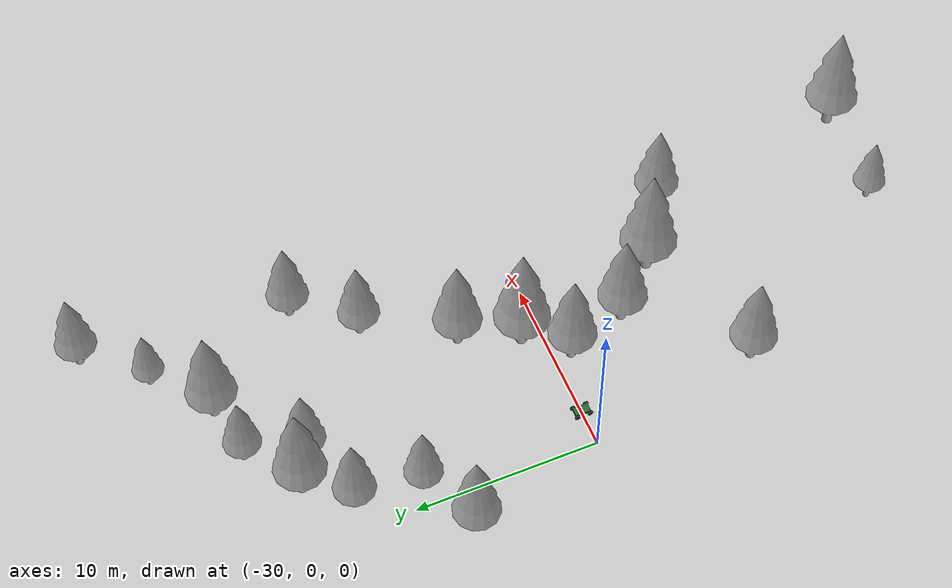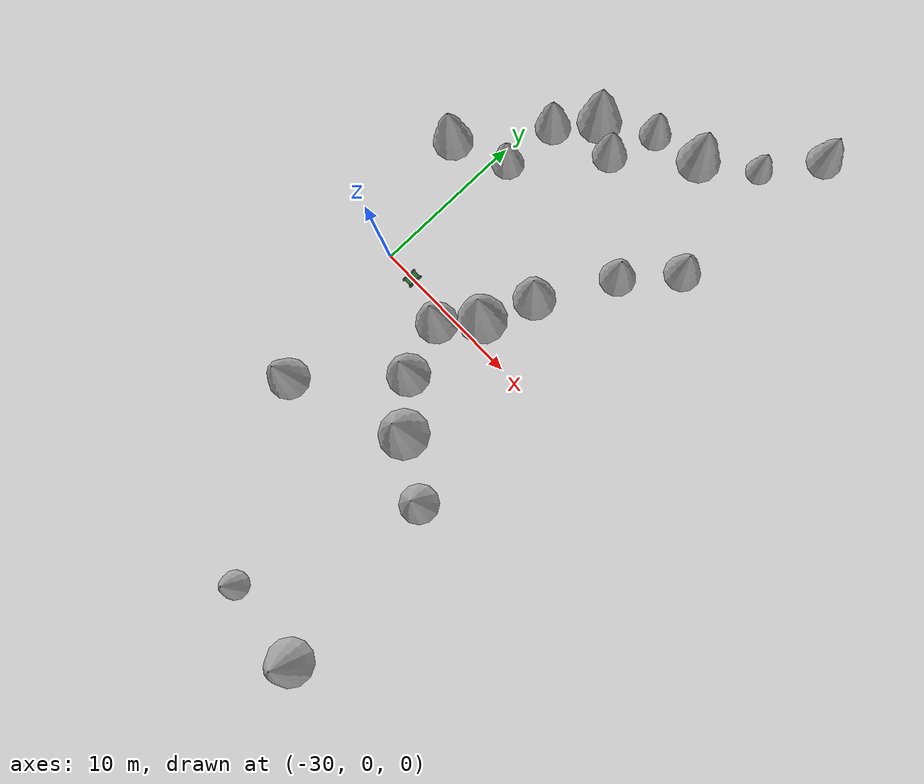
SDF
<sdf version="1.9">
 <world name="nomad_forest">
  <model name="tree_013">
   <static>true</static>
   <pose>-18.874881461118147 8.75328113137504 0.11400853656305698 0 0 5.807915895315944</pose>
   <link name="link">
    <visual name="visual">
     <geometry>
      <mesh>
       <uri>../assets/models/pine_tree.obj</uri>
       <scale>1.2615501843951384 1.2615501843951384 1.2615501843951384</scale>
      </mesh>
     </geometry>
    </visual>
    <collision name="trunk">
     <pose>0 0 2.0184802950322216 0 0 0</pose>
     <geometry>
      <cylinder><radius>0.2523100368790277</radius><length>4.036960590064443</length></cylinder>
     </geometry>
    </collision>
   </link>
  </model>
  <model name="tree_066">
   <static>true</static>
   <pose>-28.481551397186305 12.689320493782844 0.10055199117383896 0 0 4.343758265578293</pose>
   <link name="link">
    <visual name="visual">
     <geometry>
      <mesh>
       <uri>../assets/models/pine_tree.obj</uri>
       <scale>1.2595461972461752 1.2595461972461752 1.2595461972461752</scale>
      </mesh>
     </geometry>
    </visual>
    <collision name="trunk">
     <pose>0 0 2.0152739155938804 0 0 0</pose>
     <geometry>
      <cylinder><radius>0.25190923944923505</radius><length>4.030547831187761</length></cylinder>
     </geometry>
    </collision>
   </link>
  </model>
  <model name="tree_069">
   <static>true</static>
   <pose>-23.359779201910932 -4.380121259435903 0.0019403356267006383 0 0 6.163970311918015</pose>
   <link name="link">
    <visual name="visual">
     <geometry>
      <mesh>
       <uri>../assets/models/pine_tree.obj</uri>
       <scale>1.4930694084586045 1.4930694084586045 1.4930694084586045</scale>
      </mesh>
     </geometry>
    </visual>
    <collision name="trunk">
     <pose>0 0 2.3889110535337674 0 0 0</pose>
     <geometry>
      <cylinder><radius>0.29861388169172093</radius><length>4.777822107067535</length></cylinder>
     </geometry>
    </collision>
   </link>
  </model>
  <model name="tree_078">
   <static>true</static>
   <pose>-28.187033647611894 -9.640139238932317 0.0 0 0 4.017669848650049</pose>
   <link name="link">
    <visual name="visual">
     <geometry>
      <mesh>
       <uri>../assets/models/pine_tree.obj</uri>
       <scale>1.4278402508123196 1.4278402508123196 1.4278402508123196</scale>
      </mesh>
     </geometry>
    </visual>
    <collision name="trunk">
     <pose>0 0 2.2845444012997116 0 0 0</pose>
     <geometry>
      <cylinder><radius>0.28556805016246395</radius><length>4.569088802599423</length></cylinder>
     </geometry>
    </collision>
   </link>
  </model>
  <model name="tree_149">
   <static>true</static>
   <pose>-21.42234835056727 4.207496814367655 0.10224305637607897 0 0 4.84083130070508</pose>
   <link name="link">
    <visual name="visual">
     <geometry>
      <mesh>
       <uri>../assets/models/pine_tree.obj</uri>
       <scale>1.4725095041482734 1.4725095041482734 1.4725095041482734</scale>
      </mesh>
     </geometry>
    </visual>
    <collision name="trunk">
     <pose>0 0 2.3560152066372377 0 0 0</pose>
     <geometry>
      <cylinder><radius>0.2945019008296547</radius><length>4.7120304132744755</length></cylinder>
     </geometry>
    </collision>
   </link>
  </model>
  <model name="tree_153">
   <static>true</static>
   <pose>-20.891091783287557 -7.006664565816436 0.07458544929184167 0 0 2.9006995232513804</pose>
   <link name="link">
    <visual name="visual">
     <geometry>
      <mesh>
       <uri>../assets/models/pine_tree.obj</uri>
       <scale>1.7337437156593505 1.7337437156593505 1.7337437156593505</scale>
      </mesh>
     </geometry>
    </visual>
    <collision name="trunk">
     <pose>0 0 2.7739899450549608 0 0 0</pose>
     <geometry>
      <cylinder><radius>0.3467487431318701</radius><length>5.5479798901099215</length></cylinder>
     </geometry>
    </collision>
   </link>
  </model>
  <model name="tree_167">
   <static>true</static>
   <pose>-20.586464398322278 17.464287054904197 0.009521682614942089 0 0 3.9372211458272104</pose>
   <link name="link">
    <visual name="visual">
     <geometry>
      <mesh>
       <uri>../assets/models/pine_tree.obj</uri>
       <scale>1.5296829712660673 1.5296829712660673 1.5296829712660673</scale>
      </mesh>
     </geometry>
    </visual>
    <collision name="trunk">
     <pose>0 0 2.447492754025708 0 0 0</pose>
     <geometry>
      <cylinder><radius>0.3059365942532135</radius><length>4.894985508051416</length></cylinder>
     </geometry>
    </collision>
   </link>
  </model>
  <model name="tree_169">
   <static>true</static>
   <pose>-15.907897212675639 -20.621054631821146 0.09158772454175604 0 0 4.397739329208943</pose>
   <link name="link">
    <visual name="visual">
     <geometry>
      <mesh>
       <uri>../assets/models/pine_tree.obj</uri>
       <scale>1.6288629303195623 1.6288629303195623 1.6288629303195623</scale>
      </mesh>
     </geometry>
    </visual>
    <collision name="trunk">
     <pose>0 0 2.6061806885112997 0 0 0</pose>
     <geometry>
      <cylinder><radius>0.32577258606391246</radius><length>5.212361377022599</length></cylinder>
     </geometry>
    </collision>
   </link>
  </model>
  <model name="tree_175">
   <static>true</static>
   <pose>-23.734347429497404 16.94640575677797 0.07473424029993755 0 0 3.4966127963765383</pose>
   <link name="link">
    <visual name="visual">
     <geometry>
      <mesh>
       <uri>../assets/models/pine_tree.obj</uri>
       <scale>1.1305137808125227 1.1305137808125227 1.1305137808125227</scale>
      </mesh>
     </geometry>
    </visual>
    <collision name="trunk">
     <pose>0 0 1.8088220493000364 0 0 0</pose>
     <geometry>
      <cylinder><radius>0.22610275616250455</radius><length>3.617644098600073</length></cylinder>
     </geometry>
    </collision>
   </link>
  </model>
  <model name="tree_194">
   <static>true</static>
   <pose>-17.336646720283735 -9.18888182673776 0.1898675990797306 0 0 3.4435954482454503</pose>
   <link name="link">
    <visual name="visual">
     <geometry>
      <mesh>
       <uri>../assets/models/pine_tree.obj</uri>
       <scale>1.3567313645033092 1.3567313645033092 1.3567313645033092</scale>
      </mesh>
     </geometry>
    </visual>
    <collision name="trunk">
     <pose>0 0 2.170770183205295 0 0 0</pose>
     <geometry><cylinder><radius>0.2713462729006619</radius><length>4.34154036641059</length></cylinder></geometry>
    </collision>
   </link>
  </model>
  <model name="tree_211">
   <static>true</static>
   <pose>-21.460599822865465 -20.115927286295552 0.2049713885581833 0 0 3.894659793628616</pose>
   <link name="link">
    <visual name="visual">
     <geometry>
      <mesh>
       <uri>../assets/models/pine_tree.obj</uri>
       <scale>0.9946663438713754 0.9946663438713754 0.9946663438713754</scale>
      </mesh>
     </geometry>
    </visual>
    <collision name="trunk">
     <pose>0 0 1.5914661501942007 0 0 0</pose>
     <geometry>
      <cylinder><radius>0.19893326877427508</radius><length>3.1829323003884014</length></cylinder>
     </geometry>
    </collision>
   </link>
  </model>
  <model name="tree_236">
   <static>true</static>
   <pose>-32.08798108521287 7.6007282029770735 0.1457010729308157 0 0 6.239127595001427</pose>
   <link name="link">
    <visual name="visual">
     <geometry>
      <mesh>
       <uri>../assets/models/pine_tree.obj</uri>
       <scale>1.4053617547678288 1.4053617547678288 1.4053617547678288</scale>
      </mesh>
     </geometry>
    </visual>
    <collision name="trunk">
     <pose>0 0 2.248578807628526 0 0 0</pose>
     <geometry>
      <cylinder><radius>0.28107235095356575</radius><length>4.497157615257052</length></cylinder>
     </geometry>
    </collision>
   </link>
  </model>
  <model name="tree_254">
   <static>true</static>
   <pose>-15.1723491187469 22.987311574693074 0.4125078526900938 0 0 4.911732377377822</pose>
   <link name="link">
    <visual name="visual">
     <geometry>
      <mesh>
       <uri>../assets/models/pine_tree.obj</uri>
       <scale>1.246869496296855 1.246869496296855 1.246869496296855</scale>
      </mesh>
     </geometry>
    </visual>
    <collision name="trunk">
     <pose>0 0 1.994991194074968 0 0 0</pose>
     <geometry><cylinder><radius>0.249373899259371</radius><length>3.989982388149936</length></cylinder></geometry>
    </collision>
   </link>
  </model>
  <model name="tree_265">
   <static>true</static>
   <pose>-26.60471211196358 14.85861522068194 0.09084812943580362 0 0 2.9267937099276815</pose>
   <link name="link">
    <visual name="visual">
     <geometry>
      <mesh>
       <uri>../assets/models/pine_tree.obj</uri>
       <scale>1.5670582890273161 1.5670582890273161 1.5670582890273161</scale>
      </mesh>
     </geometry>
    </visual>
    <collision name="trunk">
     <pose>0 0 2.507293262443706 0 0 0</pose>
     <geometry>
      <cylinder><radius>0.31341165780546326</radius><length>5.014586524887412</length></cylinder>
     </geometry>
    </collision>
   </link>
  </model>
  <model name="tree_282">
   <static>true</static>
   <pose>-17.61697545870494 19.955846756455564 0.0847304603588547 0 0 6.049162888117273</pose>
   <link name="link">
    <visual name="visual">
     <geometry>
      <mesh>
       <uri>../assets/models/pine_tree.obj</uri>
       <scale>0.9516946154348055 0.9516946154348055 0.9516946154348055</scale>
      </mesh>
     </geometry>
    </visual>
    <collision name="trunk">
     <pose>0 0 1.5227113846956888 0 0 0</pose>
     <geometry>
      <cylinder><radius>0.1903389230869611</radius><length>3.0454227693913776</length></cylinder>
     </geometry>
    </collision>
   </link>
  </model>
  <model name="tree_286">
   <static>true</static>
   <pose>-22.66837533851311 1.0839203077479418 0.0029319875521565154 0 0 1.534402331849381</pose>
   <link name="link">
    <visual name="visual">
     <geometry>
      <mesh>
       <uri>../assets/models/pine_tree.obj</uri>
       <scale>1.7071312498833526 1.7071312498833526 1.7071312498833526</scale>
      </mesh>
     </geometry>
    </visual>
    <collision name="trunk">
     <pose>0 0 2.7314099998133643 0 0 0</pose>
     <geometry>
      <cylinder><radius>0.34142624997667054</radius><length>5.462819999626729</length></cylinder>
     </geometry>
    </collision>
   </link>
  </model>
  <model name="tree_297">
   <static>true</static>
   <pose>-28.81453351404167 9.11830352773918 0.0008690736626581766 0 0 2.5639489472201085</pose>
   <link name="link">
    <visual name="visual">
     <geometry>
      <mesh>
       <uri>../assets/models/pine_tree.obj</uri>
       <scale>1.1402890045643521 1.1402890045643521 1.1402890045643521</scale>
      </mesh>
     </geometry>
    </visual>
    <collision name="trunk">
     <pose>0 0 1.8244624073029634 0 0 0</pose>
     <geometry>
      <cylinder><radius>0.22805780091287042</radius><length>3.6489248146059268</length></cylinder>
     </geometry>
    </collision>
   </link>
  </model>
  <model name="tree_312">
   <static>true</static>
   <pose>-24.75265672608075 13.95472760592856 0.0007574845042103398 0 0 0.65510919115056</pose>
   <link name="link">
    <visual name="visual">
     <geometry>
      <mesh>
       <uri>../assets/models/pine_tree.obj</uri>
       <scale>1.2242497348314314 1.2242497348314314 1.2242497348314314</scale>
      </mesh>
     </geometry>
    </visual>
    <collision name="trunk">
     <pose>0 0 1.9587995757302903 0 0 0</pose>
     <geometry>
      <cylinder><radius>0.24484994696628629</radius><length>3.9175991514605806</length></cylinder>
     </geometry>
    </collision>
   </link>
  </model>
  <model name="tree_319">
   <static>true</static>
   <pose>-16.338997851109397 11.796116220900252 0.05705821960165156 0 0 1.2190195895403377</pose>
   <link name="link">
    <visual name="visual">
     <geometry>
      <mesh>
       <uri>../assets/models/pine_tree.obj</uri>
       <scale>1.2792700176452034 1.2792700176452034 1.2792700176452034</scale>
      </mesh>
     </geometry>
    </visual>
    <collision name="trunk">
     <pose>0 0 2.0468320282323256 0 0 0</pose>
     <geometry>
      <cylinder><radius>0.2558540035290407</radius><length>4.093664056464651</length></cylinder>
     </geometry>
    </collision>
   </link>
  </model>
  <model name="tree_336">
   <static>true</static>
   <pose>-24.493613226581587 -0.9810111616008754 0.0 0 0 3.567763804688622</pose>
   <link name="link">
    <visual name="visual">
     <geometry>
      <mesh>
       <uri>../assets/models/pine_tree.obj</uri>
       <scale>1.468461257795776 1.468461257795776 1.468461257795776</scale>
      </mesh>
     </geometry>
    </visual>
    <collision name="trunk">
     <pose>0 0 2.349538012473242 0 0 0</pose>
     <geometry>
      <cylinder><radius>0.29369225155915524</radius><length>4.699076024946484</length></cylinder>
     </geometry>
    </collision>
   </link>
  </model>
  <model name="nomad_vehicle" canonical_link="base_link">
   <static>false</static>
   <link name="base_link">
    <pose relative_to="__model__">0 0 0 0 0 0</pose>
    <inertial>
     <pose>0 0 0.2 0 0 0</pose>
     <mass>30</mass>
     <inertia><ixx>0.661</ixx><iyy>1.84225</iyy><izz>2.43125</izz><ixy>0</ixy><ixz>0</ixz><iyz>0</iyz></inertia>
    </inertial>
    <visual name="base_link_visual">
     <pose>0 0 0.2 0 0 0</pose>
     <geometry><box><size>0.85 0.5 0.12</size></box></geometry>
     <material><ambient>0.15 0.38 0.18 1</ambient><diffuse>0.15 0.38 0.18 1</diffuse></material>
    </visual>
    <collision name="base_link_collision">
     <pose>0 0 0.2 0 0 0</pose>
     <geometry><box><size>0.85 0.5 0.12</size></box></geometry>
    </collision>
    <sensor name="oak_rgb" type="rgbd_camera">
     <pose relative_to="base_link">0.46 0 0.29 0 0 0</pose>
     <always_on>true</always_on>
     <update_rate>30</update_rate>
     <visualize>false</visualize>
     <topic>/nomad/raw/oak/rgbd</topic>
     <gz_frame_id>oak_rgb_optical_frame</gz_frame_id>
     <camera>
      <optical_frame_id>oak_rgb_optical_frame</optical_frame_id>
      <horizontal_fov>1.20427718387609</horizontal_fov>
      <image><width>640</width><height>480</height><format>R8G8B8</format></image>
      <clip><near>0.05</near><far>40</far></clip>
      <depth_camera><clip><near>0.4</near><far>8</far></clip></depth_camera>
      <lens>
       <type>gnomonical</type>
       <intrinsics><fx>465.602889175182</fx><fy>471.026521321236</fy><cx>320</cx><cy>240</cy><s>0</s></intrinsics>
       <projection>
        <p_fx>465.602889175182</p_fx>
        <p_fy>471.026521321236</p_fy>
        <p_cx>320</p_cx>
        <p_cy>240</p_cy>
        <tx>0</tx>
        <ty>0</ty>
       </projection>
      </lens>
     </camera>
    </sensor>
    <sensor name="oak_left" type="camera">
     <pose relative_to="base_link">0.46 0.0375 0.29 0 0 0</pose>
     <always_on>true</always_on>
     <update_rate>30</update_rate>
     <visualize>false</visualize>
     <topic>/nomad/raw/oak/left/image_raw</topic>
     <gz_frame_id>oak_left_optical_frame</gz_frame_id>
     <camera>
      <optical_frame_id>oak_left_optical_frame</optical_frame_id>
      <camera_info_topic>/nomad/raw/oak/left/camera_info</camera_info_topic>
      <horizontal_fov>1.27409035395586</horizontal_fov>
      <image><width>640</width><height>480</height><format>L8</format></image>
      <clip><near>0.05</near><far>40</far></clip>
      <lens>
       <type>gnomonical</type>
       <intrinsics><fx>432.455180142659</fx><fy>432.971461265142</fy><cx>320</cx><cy>240</cy><s>0</s></intrinsics>
       <projection>
        <p_fx>432.455180142659</p_fx>
        <p_fy>432.971461265142</p_fy>
        <p_cx>320</p_cx>
        <p_cy>240</p_cy>
        <tx>0</tx>
        <ty>0</ty>
       </projection>
      </lens>
     </camera>
    </sensor>
    <sensor name="oak_right" type="camera">
     <pose relative_to="base_link">0.46 -0.0375 0.29 0 0 0</pose>
     <always_on>true</always_on>
     <update_rate>30</update_rate>
     <visualize>false</visualize>
     <topic>/nomad/raw/oak/right/image_raw</topic>
     <gz_frame_id>oak_right_optical_frame</gz_frame_id>
     <camera>
      <optical_frame_id>oak_right_optical_frame</optical_frame_id>
      <camera_info_topic>/nomad/raw/oak/right/camera_info</camera_info_topic>
      <horizontal_fov>1.27409035395586</horizontal_fov>
      <image><width>640</width><height>480</height><format>L8</format></image>
      <clip><near>0.05</near><far>40</far></clip>
      <lens>
       <type>gnomonical</type>
       <intrinsics><fx>432.455180142659</fx><fy>432.971461265142</fy><cx>320</cx><cy>240</cy><s>0</s></intrinsics>
       <projection>
        <p_fx>432.455180142659</p_fx>
        <p_fy>432.971461265142</p_fy>
        <p_cx>320</p_cx>
        <p_cy>240</p_cy>
        <tx>-32.4341385106994</tx>
        <ty>0</ty>
       </projection>
      </lens>
     </camera>
    </sensor>
    <sensor name="ydlidar_g2" type="gpu_lidar">
     <pose relative_to="base_link">0.15 0 0.38 0 0 0</pose>
     <topic>/nomad/raw/scan</topic>
     <gz_frame_id>scan</gz_frame_id>
     <always_on>true</always_on>
     <update_rate>10</update_rate>
     <visualize>false</visualize>
     <lidar>
      <scan>
       <horizontal>
        <samples>500</samples>
        <resolution>1</resolution>
        <min_angle>-3.14159265358979</min_angle>
        <max_angle>3.12902628297543</max_angle>
       </horizontal>
       <vertical>
        <samples>1</samples>
        <resolution>1</resolution>
        <min_angle>0</min_angle>
        <max_angle>0</max_angle>
       </vertical>
      </scan>
      <range><min>0.12</min><max>12</max><resolution>0.01</resolution></range>
      <noise><type>gaussian</type><mean>0</mean><stddev>0.01</stddev></noise>
     </lidar>
    </sensor>
    <sensor name="oak_imu" type="imu">
     <pose relative_to="base_link">0.46 0 0.29 0 0 0</pose>
     <always_on>true</always_on>
     <update_rate>200</update_rate>
     <topic>/nomad/raw/oak/imu</topic>
     <gz_frame_id>oak_imu_frame</gz_frame_id>
    </sensor>
   </link>
   <link name="front_left_steering_link">
    <pose relative_to="__model__">0.36 0.3 0.15 0 0 0</pose>
    <inertial>
     <mass>0.3</mass>
     <inertia>
      <ixx>8.6875e-05</ixx>
      <iyy>8.6875e-05</iyy>
      <izz>9.375e-05</izz>
      <ixy>0</ixy>
      <ixz>0</ixz>
      <iyz>0</iyz>
     </inertia>
    </inertial>
    <visual name="front_left_steering_link_visual">
     <geometry><cylinder><radius>0.025</radius><length>0.04</length></cylinder></geometry>
     <material><ambient>0.12 0.12 0.12 1</ambient><diffuse>0.12 0.12 0.12 1</diffuse></material>
    </visual>
   </link>
   <link name="front_left_wheel">
    <pose relative_to="__model__">0.36 0.3 0.15 0 0 0</pose>
    <inertial>
     <mass>1</mass>
     <inertia>
      <ixx>0.00615833333333333</ixx>
      <iyy>0.01125</iyy>
      <izz>0.00615833333333333</izz>
      <ixy>0</ixy>
      <ixz>0</ixz>
      <iyz>0</iyz>
     </inertia>
    </inertial>
    <visual name="front_left_wheel_visual">
     <pose>0 0 0 1.5707963267949 0 0</pose>
     <geometry><cylinder><radius>0.15</radius><length>0.08</length></cylinder></geometry>
     <material><ambient>0.12 0.12 0.12 1</ambient><diffuse>0.12 0.12 0.12 1</diffuse></material>
    </visual>
    <collision name="front_left_wheel_collision">
     <pose>0 0 0 1.5707963267949 0 0</pose>
     <geometry><cylinder><radius>0.15</radius><length>0.08</length></cylinder></geometry>
     <surface><friction><ode><mu>1</mu><mu2>1</mu2></ode></friction></surface>
    </collision>
   </link>
   <link name="front_right_steering_link">
    <pose relative_to="__model__">0.36 -0.3 0.15 0 0 0</pose>
    <inertial>
     <mass>0.3</mass>
     <inertia>
      <ixx>8.6875e-05</ixx>
      <iyy>8.6875e-05</iyy>
      <izz>9.375e-05</izz>
      <ixy>0</ixy>
      <ixz>0</ixz>
      <iyz>0</iyz>
     </inertia>
    </inertial>
    <visual name="front_right_steering_link_visual">
     <geometry><cylinder><radius>0.025</radius><length>0.04</length></cylinder></geometry>
     <material><ambient>0.12 0.12 0.12 1</ambient><diffuse>0.12 0.12 0.12 1</diffuse></material>
    </visual>
   </link>
   <link name="front_right_wheel">
    <pose relative_to="__model__">0.36 -0.3 0.15 0 0 0</pose>
    <inertial>
     <mass>1</mass>
     <inertia>
      <ixx>0.00615833333333333</ixx>
      <iyy>0.01125</iyy>
      <izz>0.00615833333333333</izz>
      <ixy>0</ixy>
      <ixz>0</ixz>
      <iyz>0</iyz>
     </inertia>
    </inertial>
    <visual name="front_right_wheel_visual">
     <pose>0 0 0 1.5707963267949 0 0</pose>
     <geometry><cylinder><radius>0.15</radius><length>0.08</length></cylinder></geometry>
     <material><ambient>0.12 0.12 0.12 1</ambient><diffuse>0.12 0.12 0.12 1</diffuse></material>
    </visual>
    <collision name="front_right_wheel_collision">
     <pose>0 0 0 1.5707963267949 0 0</pose>
     <geometry><cylinder><radius>0.15</radius><length>0.08</length></cylinder></geometry>
     <surface><friction><ode><mu>1</mu><mu2>1</mu2></ode></friction></surface>
    </collision>
   </link>
   <link name="rear_left_wheel">
    <pose relative_to="__model__">-0.36 0.3 0.15 0 0 0</pose>
    <inertial>
     <mass>1</mass>
     <inertia>
      <ixx>0.00615833333333333</ixx>
      <iyy>0.01125</iyy>
      <izz>0.00615833333333333</izz>
      <ixy>0</ixy>
      <ixz>0</ixz>
      <iyz>0</iyz>
     </inertia>
    </inertial>
    <visual name="rear_left_wheel_visual">
     <pose>0 0 0 1.5707963267949 0 0</pose>
     <geometry><cylinder><radius>0.15</radius><length>0.08</length></cylinder></geometry>
     <material><ambient>0.12 0.12 0.12 1</ambient><diffuse>0.12 0.12 0.12 1</diffuse></material>
    </visual>
    <collision name="rear_left_wheel_collision">
     <pose>0 0 0 1.5707963267949 0 0</pose>
     <geometry><cylinder><radius>0.15</radius><length>0.08</length></cylinder></geometry>
     <surface><friction><ode><mu>1</mu><mu2>1</mu2></ode></friction></surface>
    </collision>
   </link>
   <link name="rear_right_wheel">
    <pose relative_to="__model__">-0.36 -0.3 0.15 0 0 0</pose>
    <inertial>
     <mass>1</mass>
     <inertia>
      <ixx>0.00615833333333333</ixx>
      <iyy>0.01125</iyy>
      <izz>0.00615833333333333</izz>
      <ixy>0</ixy>
      <ixz>0</ixz>
      <iyz>0</iyz>
     </inertia>
    </inertial>
    <visual name="rear_right_wheel_visual">
     <pose>0 0 0 1.5707963267949 0 0</pose>
     <geometry><cylinder><radius>0.15</radius><length>0.08</length></cylinder></geometry>
     <material><ambient>0.12 0.12 0.12 1</ambient><diffuse>0.12 0.12 0.12 1</diffuse></material>
    </visual>
    <collision name="rear_right_wheel_collision">
     <pose>0 0 0 1.5707963267949 0 0</pose>
     <geometry><cylinder><radius>0.15</radius><length>0.08</length></cylinder></geometry>
     <surface><friction><ode><mu>1</mu><mu2>1</mu2></ode></friction></surface>
    </collision>
   </link>
   <joint name="front_left_steering_joint" type="revolute">
    <parent>base_link</parent>
    <child>front_left_steering_link</child>
    <pose relative_to="front_left_steering_link">0 0 0 0 0 0</pose>
    <axis>
     <xyz>0 0 1</xyz>
     <limit><lower>-0.55</lower><upper>0.55</upper><effort>12</effort><velocity>2</velocity></limit>
     <dynamics><damping>0.02</damping></dynamics>
    </axis>
   </joint>
   <joint name="front_left_wheel_joint" type="revolute">
    <parent>front_left_steering_link</parent>
    <child>front_left_wheel</child>
    <pose relative_to="front_left_wheel">0 0 0 0 0 0</pose>
    <axis>
     <xyz>0 1 0</xyz>
     <limit><lower>-1e+16</lower><upper>1e+16</upper><effort>20</effort><velocity>20</velocity></limit>
     <dynamics><damping>0.02</damping></dynamics>
    </axis>
   </joint>
   <joint name="front_right_steering_joint" type="revolute">
    <parent>base_link</parent>
    <child>front_right_steering_link</child>
    <pose relative_to="front_right_steering_link">0 0 0 0 0 0</pose>
    <axis>
     <xyz>0 0 1</xyz>
     <limit><lower>-0.55</lower><upper>0.55</upper><effort>12</effort><velocity>2</velocity></limit>
     <dynamics><damping>0.02</damping></dynamics>
    </axis>
   </joint>
   <joint name="front_right_wheel_joint" type="revolute">
    <parent>front_right_steering_link</parent>
    <child>front_right_wheel</child>
    <pose relative_to="front_right_wheel">0 0 0 0 0 0</pose>
    <axis>
     <xyz>0 1 0</xyz>
     <limit><lower>-1e+16</lower><upper>1e+16</upper><effort>20</effort><velocity>20</velocity></limit>
     <dynamics><damping>0.02</damping></dynamics>
    </axis>
   </joint>
   <joint name="rear_left_wheel_joint" type="revolute">
    <parent>base_link</parent>
    <child>rear_left_wheel</child>
    <pose relative_to="rear_left_wheel">0 0 0 0 0 0</pose>
    <axis>
     <xyz>0 1 0</xyz>
     <limit><lower>-1e+16</lower><upper>1e+16</upper><effort>20</effort><velocity>20</velocity></limit>
     <dynamics><damping>0.02</damping></dynamics>
    </axis>
   </joint>
   <joint name="rear_right_wheel_joint" type="revolute">
    <parent>base_link</parent>
    <child>rear_right_wheel</child>
    <pose relative_to="rear_right_wheel">0 0 0 0 0 0</pose>
    <axis>
     <xyz>0 1 0</xyz>
     <limit><lower>-1e+16</lower><upper>1e+16</upper><effort>20</effort><velocity>20</velocity></limit>
     <dynamics><damping>0.02</damping></dynamics>
    </axis>
   </joint>
   <frame name="oak_rgb_optical_frame" attached_to="base_link">
    <pose relative_to="base_link">0.46 0 0.29 -1.5707963267949 0 -1.5707963267949</pose>
   </frame>
   <frame name="oak_depth_optical_frame" attached_to="base_link">
    <pose relative_to="base_link">0.46 0 0.29 -1.5707963267949 0 -1.5707963267949</pose>
   </frame>
   <frame name="oak_left_optical_frame" attached_to="base_link">
    <pose relative_to="base_link">0.46 0.0375 0.29 -1.5707963267949 0 -1.5707963267949</pose>
   </frame>
   <frame name="oak_right_optical_frame" attached_to="base_link">
    <pose relative_to="base_link">0.46 -0.0375 0.29 -1.5707963267949 0 -1.5707963267949</pose>
   </frame>
   <frame name="scan" attached_to="base_link"><pose relative_to="base_link">0.15 0 0.38 0 0 0</pose></frame>
   <frame name="oak_imu_frame" attached_to="base_link">
    <pose relative_to="base_link">0.46 0 0.29 0 0 0</pose>
   </frame>
   <plugin filename="gz-sim-ackermann-steering-system" name="gz::sim::systems::AckermannSteering">
    <left_joint>rear_left_wheel_joint</left_joint>
    <right_joint>rear_right_wheel_joint</right_joint>
    <left_steering_joint>front_left_steering_joint</left_steering_joint>
    <right_steering_joint>front_right_steering_joint</right_steering_joint>
    <wheel_base>0.72</wheel_base>
    <wheel_separation>0.6</wheel_separation>
    <kingpin_width>0.6</kingpin_width>
    <wheel_radius>0.15</wheel_radius>
    <steering_limit>0.55</steering_limit>
    <min_velocity>-1</min_velocity>
    <max_velocity>1</max_velocity>
    <min_acceleration>-0.6</min_acceleration>
    <max_acceleration>0.6</max_acceleration>
    <topic>/nomad/vehicle/cmd_vel</topic>
    <odom_topic>/nomad/vehicle/wheel_odom</odom_topic>
    <tf_topic>/nomad/vehicle/wheel_tf</tf_topic>
    <frame_id>odom</frame_id>
    <child_frame_id>base_link</child_frame_id>
    <odom_publish_frequency>50</odom_publish_frequency>
   </plugin>
   <plugin filename="gz-sim-odometry-publisher-system" name="gz::sim::systems::OdometryPublisher">
    <dimensions>3</dimensions>
    <odom_frame>odom</odom_frame>
    <robot_base_frame>base_link</robot_base_frame>
    <odom_topic>/nomad/vehicle/odom</odom_topic>
    <tf_topic>/nomad/vehicle/tf</tf_topic>
    <odom_publish_frequency>50</odom_publish_frequency>
    <gaussian_noise>0</gaussian_noise>
   </plugin>
   <plugin filename="gz-sim-joint-state-publisher-system" name="gz::sim::systems::JointStatePublisher">
    <topic>/nomad/vehicle/joint_states</topic>
    <update_rate>50</update_rate>
    <joint_name>front_left_steering_joint</joint_name>
    <joint_name>front_left_wheel_joint</joint_name>
    <joint_name>front_right_steering_joint</joint_name>
    <joint_name>front_right_wheel_joint</joint_name>
    <joint_name>rear_left_wheel_joint</joint_name>
    <joint_name>rear_right_wheel_joint</joint_name>
   </plugin>
   <pose>-28 0 0.03 0 0 -1.5707963267948966</pose>
  </model>
 </world>
</sdf>
